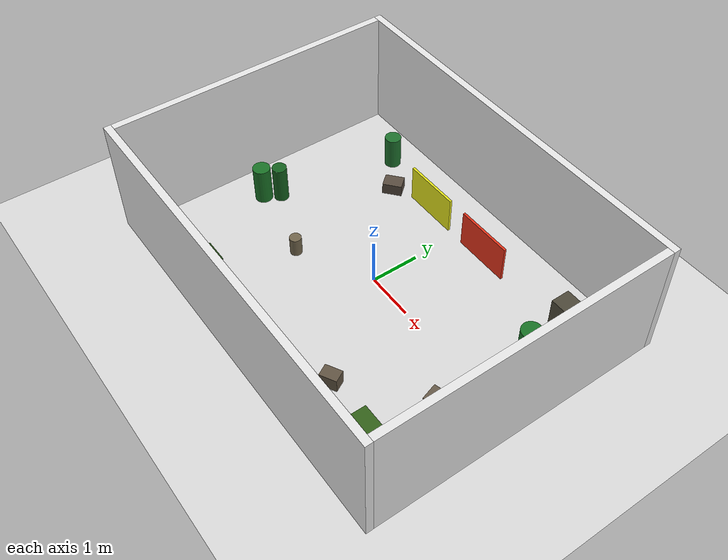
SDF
<?xml version="1.0"?>
<sdf version="1.8">
  <world name="cuttlebot_world">

    <physics type="ode">
      <max_step_size>0.003</max_step_size>
      <real_time_factor>1.0</real_time_factor>
    </physics>

    <!-- gazebo plugins -->
    <plugin name="gz::sim::systems::Physics" filename="gz-sim-physics-system" />
    <plugin name="gz::sim::systems::UserCommands" filename="gz-sim-user-commands-system" />
    <plugin name="gz::sim::systems::SceneBroadcaster" filename="gz-sim-scene-broadcaster-system" />
    <plugin name="gz::sim::systems::Contact" filename="gz-sim-contact-system" />

    <scene>
      <ambient>0.8 0.8 0.8 1</ambient>
      <background>0.3 0.7 0.9 1</background>
      <shadows>false</shadows>
      <grid>false</grid>
    </scene>

    <light type="directional" name="sun">
      <cast_shadows>false</cast_shadows>
      <pose>0 0 10 0 0 0</pose>
      <diffuse>0.8 0.8 0.8 1</diffuse>
      <specular>0.2 0.2 0.2 1</specular>
      <direction>-0.5 0.1 -0.9</direction>
    </light>

    <!-- ground plane -->
    <model name="ground_plane">
      <static>true</static>
      <link name="link">
        <collision name="collision">
          <geometry>
            <plane>
              <normal>0 0 1</normal>
              <size>20 20</size>
            </plane>
          </geometry>
        </collision>
        <visual name="visual">
          <geometry>
            <plane>
              <normal>0 0 1</normal>
              <size>20 20</size>
            </plane>
          </geometry>
          <material>
            <ambient>0.85 0.85 0.85 1</ambient>
            <diffuse>0.85 0.85 0.85 1</diffuse>
          </material>
        </visual>
      </link>
    </model>

    <!--
      Room: 8m x 6m enclosed space
      Walls are 0.15m thick, 2.5m tall
      Origin is at center of room
    -->

    <!-- north wall (along +y) -->
    <model name="wall_north">
      <static>true</static>
      <pose>0 3.075 1.25 0 0 0</pose>
      <link name="link">
        <collision name="collision">
          <geometry><box><size>8.3 0.15 2.5</size></box></geometry>
        </collision>
        <visual name="visual">
          <geometry><box><size>8.3 0.15 2.5</size></box></geometry>
          <material>
            <ambient>0.9 0.9 0.9 1</ambient>
            <diffuse>0.9 0.9 0.9 1</diffuse>
          </material>
        </visual>
      </link>
    </model>

    <!-- south wall (along -y) -->
    <model name="wall_south">
      <static>true</static>
      <pose>0 -3.075 1.25 0 0 0</pose>
      <link name="link">
        <collision name="collision">
          <geometry><box><size>8.3 0.15 2.5</size></box></geometry>
        </collision>
        <visual name="visual">
          <geometry><box><size>8.3 0.15 2.5</size></box></geometry>
          <material>
            <ambient>0.9 0.9 0.9 1</ambient>
            <diffuse>0.9 0.9 0.9 1</diffuse>
          </material>
        </visual>
      </link>
    </model>

    <!-- east wall (along +x) -->
    <model name="wall_east">
      <static>true</static>
      <pose>4.075 0 1.25 0 0 0</pose>
      <link name="link">
        <collision name="collision">
          <geometry><box><size>0.15 6.0 2.5</size></box></geometry>
        </collision>
        <visual name="visual">
          <geometry><box><size>0.15 6.0 2.5</size></box></geometry>
          <material>
            <ambient>0.9 0.9 0.9 1</ambient>
            <diffuse>0.9 0.9 0.9 1</diffuse>
          </material>
        </visual>
      </link>
    </model>

    <!-- west wall (along -x) -->
    <model name="wall_west">
      <static>true</static>
      <pose>-4.075 0 1.25 0 0 0</pose>
      <link name="link">
        <collision name="collision">
          <geometry><box><size>0.15 6.0 2.5</size></box></geometry>
        </collision>
        <visual name="visual">
          <geometry><box><size>0.15 6.0 2.5</size></box></geometry>
          <material>
            <ambient>0.9 0.9 0.9 1</ambient>
            <diffuse>0.9 0.9 0.9 1</diffuse>
          </material>
        </visual>
      </link>
    </model>

    <!-- kelp: tall thin cylinders (dark green) -->
    <model name="kelp_1">
      <static>true</static>
      <pose>-3.2 -0.5 0.4 0 0 0</pose>
      <link name="link">
        <collision name="collision">
          <geometry><cylinder><radius>0.18</radius><length>0.8</length></cylinder></geometry>
        </collision>
        <visual name="visual">
          <geometry><cylinder><radius>0.18</radius><length>0.8</length></cylinder></geometry>
          <material>
            <ambient>0.1 0.4 0.15 1</ambient>
            <diffuse>0.1 0.45 0.15 1</diffuse>
          </material>
        </visual>
      </link>
    </model>

    <model name="kelp_2">
      <static>true</static>
      <pose>-3.0 -0.2 0.4 0 0 0</pose>
      <link name="link">
        <collision name="collision">
          <geometry><cylinder><radius>0.15</radius><length>0.8</length></cylinder></geometry>
        </collision>
        <visual name="visual">
          <geometry><cylinder><radius>0.15</radius><length>0.8</length></cylinder></geometry>
          <material>
            <ambient>0.08 0.35 0.12 1</ambient>
            <diffuse>0.08 0.38 0.12 1</diffuse>
          </material>
        </visual>
      </link>
    </model>

    <model name="kelp_3">
      <static>true</static>
      <pose>3.2 1.0 0.5 0 0 0</pose>
      <link name="link">
        <collision name="collision">
          <geometry><cylinder><radius>0.20</radius><length>1.0</length></cylinder></geometry>
        </collision>
        <visual name="visual">
          <geometry><cylinder><radius>0.20</radius><length>1.0</length></cylinder></geometry>
          <material>
            <ambient>0.1 0.4 0.15 1</ambient>
            <diffuse>0.1 0.45 0.15 1</diffuse>
          </material>
        </visual>
      </link>
    </model>

    <model name="kelp_4">
      <static>true</static>
      <pose>-2.5 2.3 0.35 0 0 0</pose>
      <link name="link">
        <collision name="collision">
          <geometry><cylinder><radius>0.17</radius><length>0.7</length></cylinder></geometry>
        </collision>
        <visual name="visual">
          <geometry><cylinder><radius>0.17</radius><length>0.7</length></cylinder></geometry>
          <material>
            <ambient>0.12 0.42 0.18 1</ambient>
            <diffuse>0.12 0.45 0.18 1</diffuse>
          </material>
        </visual>
      </link>
    </model>

    <!-- algae patches: low flat clusters (green-brown) -->
    <model name="algae_1">
      <static>true</static>
      <pose>2.8 -2.2 0.25 0 0 0</pose>
      <link name="link">
        <collision name="collision">
          <geometry><box><size>0.6 0.45 0.5</size></box></geometry>
        </collision>
        <visual name="visual">
          <geometry><box><size>0.6 0.45 0.5</size></box></geometry>
          <material>
            <ambient>0.2 0.35 0.1 1</ambient>
            <diffuse>0.2 0.38 0.1 1</diffuse>
          </material>
        </visual>
      </link>
    </model>

    <model name="algae_2">
      <static>true</static>
      <pose>-2.0 -2.5 0.25 0 0 0</pose>
      <link name="link">
        <collision name="collision">
          <geometry><box><size>0.5 0.5 0.5</size></box></geometry>
        </collision>
        <visual name="visual">
          <geometry><box><size>0.5 0.5 0.5</size></box></geometry>
          <material>
            <ambient>0.15 0.3 0.08 1</ambient>
            <diffuse>0.15 0.32 0.08 1</diffuse>
          </material>
        </visual>
      </link>
    </model>

    <!-- rocks: small irregular shapes (gray-brown) -->
    <model name="rock_1">
      <static>true</static>
      <pose>3.0 -0.8 0.15 0 0 0.3</pose>
      <link name="link">
        <collision name="collision">
          <geometry><box><size>0.45 0.35 0.3</size></box></geometry>
        </collision>
        <visual name="visual">
          <geometry><box><size>0.45 0.35 0.3</size></box></geometry>
          <material>
            <ambient>0.4 0.35 0.28 1</ambient>
            <diffuse>0.4 0.35 0.28 1</diffuse>
          </material>
        </visual>
      </link>
    </model>

    <model name="rock_2">
      <static>true</static>
      <pose>-1.8 1.8 0.125 0 0 0.7</pose>
      <link name="link">
        <collision name="collision">
          <geometry><box><size>0.4 0.3 0.25</size></box></geometry>
        </collision>
        <visual name="visual">
          <geometry><box><size>0.4 0.3 0.25</size></box></geometry>
          <material>
            <ambient>0.35 0.3 0.25 1</ambient>
            <diffuse>0.35 0.3 0.25 1</diffuse>
          </material>
        </visual>
      </link>
    </model>

    <!-- corridor pillar — breaks L/R symmetry near robot path -->
    <model name="corridor_pillar_1">
      <static>true</static>
      <pose>-1.5 -0.8 0.2 0 0 0</pose>
      <link name="link">
        <collision name="collision">
          <geometry><cylinder><radius>0.12</radius><length>0.4</length></cylinder></geometry>
        </collision>
        <visual name="visual">
          <geometry><cylinder><radius>0.12</radius><length>0.4</length></cylinder></geometry>
          <material>
            <ambient>0.45 0.4 0.3 1</ambient>
            <diffuse>0.45 0.4 0.3 1</diffuse>
          </material>
        </visual>
      </link>
    </model>

    <!-- rock near CENTER area -->
    <model name="corridor_rock_2">
      <static>true</static>
      <pose>1.5 -2.0 0.15 0 0 0.5</pose>
      <link name="link">
        <collision name="collision">
          <geometry><box><size>0.35 0.25 0.3</size></box></geometry>
        </collision>
        <visual name="visual">
          <geometry><box><size>0.35 0.25 0.3</size></box></geometry>
          <material>
            <ambient>0.38 0.33 0.26 1</ambient>
            <diffuse>0.38 0.33 0.26 1</diffuse>
          </material>
        </visual>
      </link>
    </model>

    <!-- large NE corner feature — breaks north wall symmetry -->
    <model name="corner_feature_ne">
      <static>true</static>
      <pose>3.0 2.2 0.3 0 0 0</pose>
      <link name="link">
        <collision name="collision">
          <geometry><box><size>0.6 0.4 0.6</size></box></geometry>
        </collision>
        <visual name="visual">
          <geometry><box><size>0.6 0.4 0.6</size></box></geometry>
          <material>
            <ambient>0.3 0.28 0.22 1</ambient>
            <diffuse>0.3 0.28 0.22 1</diffuse>
          </material>
        </visual>
      </link>
    </model>

    <!-- left chamber marker (yellow = live shrimp) -->
    <model name="marker_left">
      <static>true</static>
      <pose>-0.8 2.0 0.4 0 0 0</pose>
      <link name="link">
        <visual name="visual">
          <geometry><box><size>1.2 0.05 0.8</size></box></geometry>
          <material>
            <ambient>0.9 0.9 0.1 1</ambient>
            <diffuse>0.9 0.9 0.1 1</diffuse>
          </material>
        </visual>
      </link>
    </model>

    <!-- right chamber marker (red = dead shrimp) — visible through gap from approach -->
    <model name="marker_right">
      <static>true</static>
      <pose>0.8 2.0 0.4 0 0 0</pose>
      <link name="link">
        <visual name="visual">
          <geometry><box><size>1.2 0.05 0.8</size></box></geometry>
          <material>
            <ambient>0.9 0.2 0.1 1</ambient>
            <diffuse>0.9 0.2 0.1 1</diffuse>
          </material>
        </visual>
      </link>
    </model>

  </world>
</sdf>
